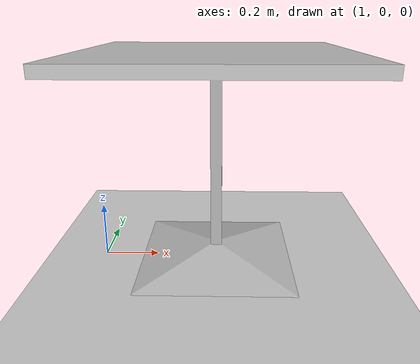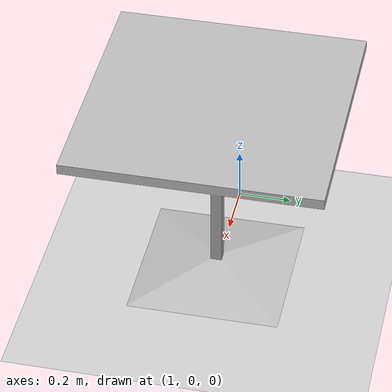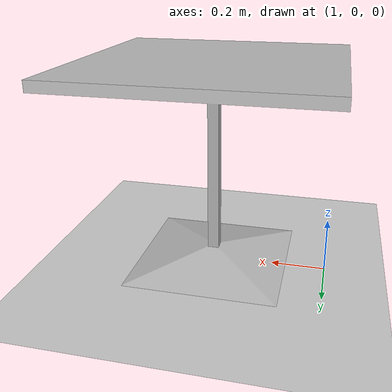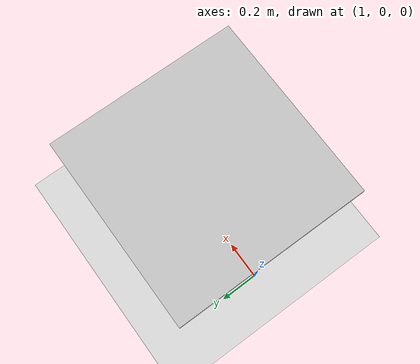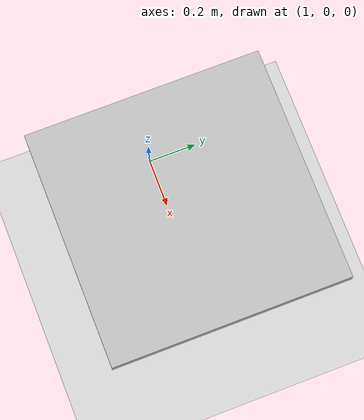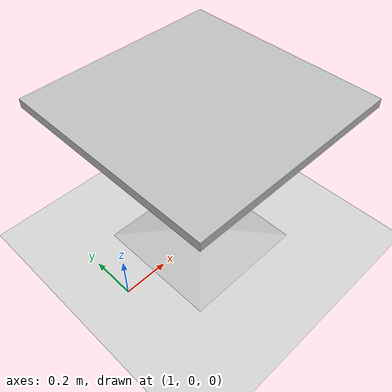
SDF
<sdf version="1.4">
  <world name="default">
    <scene>
      <ambient>.1 .1 .1 1</ambient>
      <shadows>false</shadows>
    </scene>
    <physics type='ode'>
      <max_step_size>0.001</max_step_size>
      <real_time_factor>1</real_time_factor>
      <real_time_update_rate>1000</real_time_update_rate>
      <gravity>0 0 -9.8</gravity>
    </physics>
    <!-- A ground plane -->
    <include>
      <uri>model://ground_plane</uri>
    </include>
    <!-- A global light source -->
    <include>
      <uri>model://sun</uri>
    </include>
    <model name='cafe_table'>
      <static>1</static>
      <link name='link'>
        <collision name='surface'>
          <pose>0 0 0.755 0 -0 0</pose>
          <geometry>
            <box>
              <size>0.913 0.913 0.04</size>
            </box>
          </geometry>
          <max_contacts>10</max_contacts>
          <surface>
            <bounce/>
            <friction>
              <ode/>
            </friction>
            <contact>
              <ode/>
            </contact>
          </surface>
        </collision>
        <collision name='column'>
          <pose>0 0 0.37 0 -0 0</pose>
          <geometry>
            <box>
              <size>0.042 0.042 0.74</size>
            </box>
          </geometry>
          <max_contacts>10</max_contacts>
          <surface>
            <bounce/>
            <friction>
              <ode/>
            </friction>
            <contact>
              <ode/>
            </contact>
          </surface>
        </collision>
        <collision name='base'>
          <pose>0 0 0.02 0 -0 0</pose>
          <geometry>
            <box>
              <size>0.56 0.56 0.04</size>
            </box>
          </geometry>
          <max_contacts>10</max_contacts>
          <surface>
            <bounce/>
            <friction>
              <ode/>
            </friction>
            <contact>
              <ode/>
            </contact>
          </surface>
        </collision>
        <visual name='visual'>
          <geometry>
            <mesh>
              <uri>model://cafe_table/meshes/cafe_table.dae</uri>
            </mesh>
          </geometry>
        </visual>
        <velocity_decay>
          <linear>0</linear>
          <angular>0</angular>
        </velocity_decay>
        <self_collide>0</self_collide>
        <kinematic>0</kinematic>
        <gravity>1</gravity>
      </link>
      <pose>1.42608 0 0 0 -0 0</pose>
    </model>
  </world>
</sdf>
